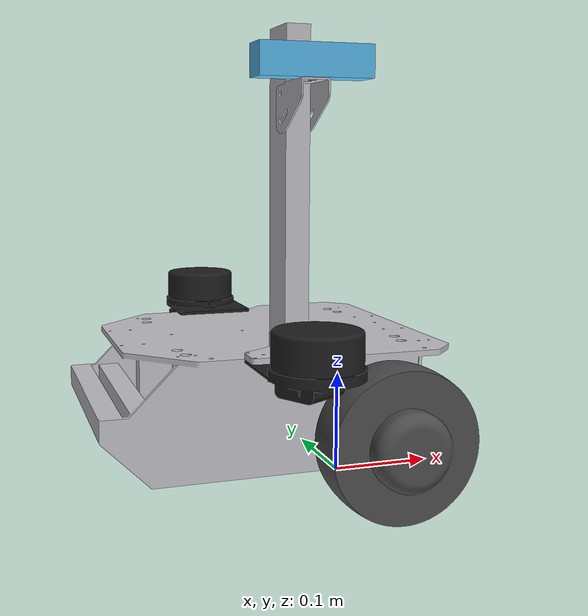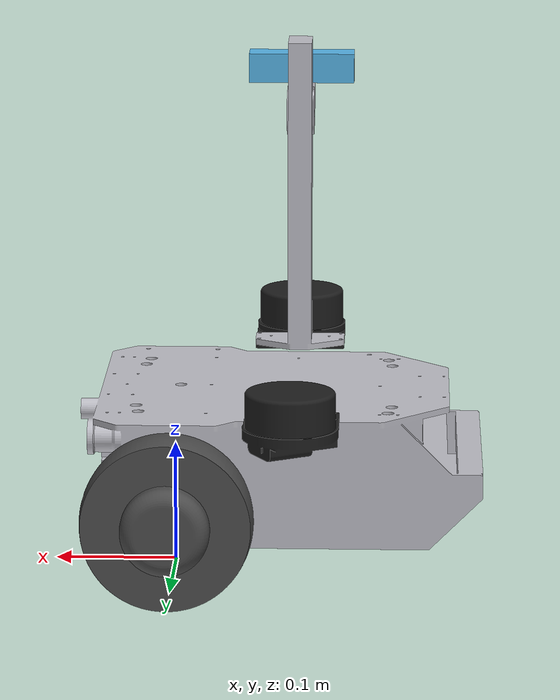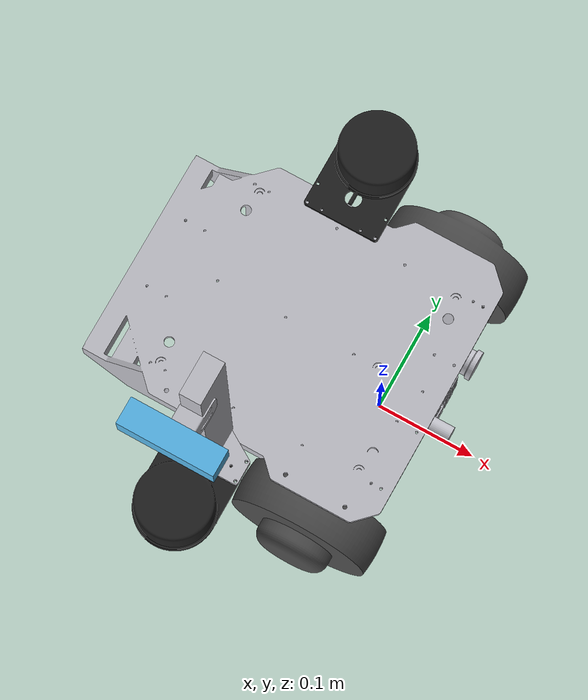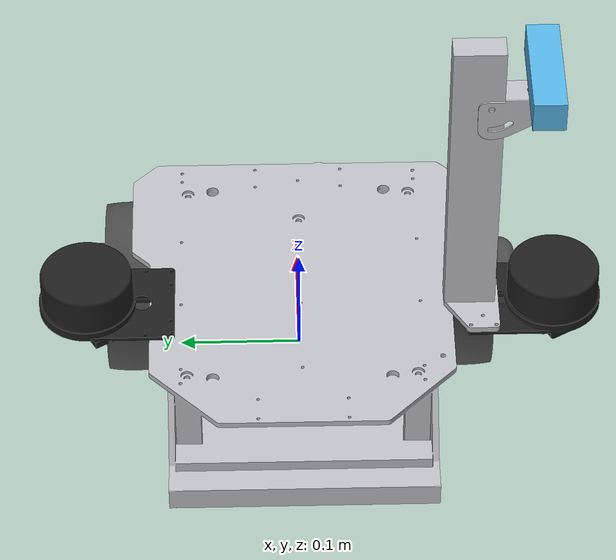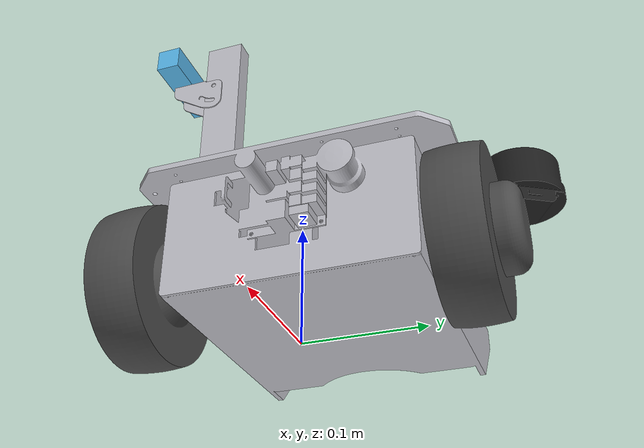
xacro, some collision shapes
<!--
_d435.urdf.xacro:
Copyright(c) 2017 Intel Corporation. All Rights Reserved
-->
<?xml version="1.0"?>
<robot name="mega3" xmlns:xacro="http://www.ros.org/wiki/xacro">

  <xacro:include filename="$(find megarover_description)/urdf/mega3_base_model.xacro" />
  <xacro:include filename="$(find megarover_description)/urdf/mega3.gazebo" />
  <!-- OPTION: LRF TG30 -->
  <xacro:include filename="$(find vs_rover_options_description)/urdf/lrf/tg30_mega3.xacro" />
  <!-- OPTION: bumper sensor -->
  <!-- OPTION: camera stay -->
  <xacro:include filename="$(find vs_rover_options_description)/urdf/cam_stay/cam_stay_mega3.xacro" />
  <!-- OPTION: Intel Realsense depth camera D435i (camera stay required) -->
  <xacro:include filename="$(find vs_rover_options_description)/urdf/depth_cam/_d435i.urdf.xacro" />
  <xacro:sensor_d435i parent="cam_mount_link" use_nominal_extrinsics="true">
    <origin xyz="0.0295 0 0.0095" rpy="0 0 0" />
  </xacro:sensor_d435i>
  <!-- OPTION: AMIR 740 (disabled by default because of interference with camera stay)-->
</robot>

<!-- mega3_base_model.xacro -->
<robot name="mega3" xmlns:xacro="http://www.ros.org/wiki/xacro">

  <xacro:include filename="$(find megarover_description)/urdf/materials.xacro" />
  <xacro:include filename="$(find megarover_description)/urdf/mega3_base_model.gazebo" />
  <!-- OPTION: LRF TG30 -->
  <!-- OPTION: bumper sensor -->

  <link name="base_footprint" />

  <joint name="base_joint" type="fixed">
    <parent link="base_footprint" />
    <child link="base_link" />
    <origin xyz="-0.1 0 0" rpy="0 0 -1.5708" />
  </joint>

  <link name="base_link">
    <inertial>
      <origin xyz="-0.0001512201285105937 -3.420007213019073e-05 0.08388833658828038" rpy="0 0 0" />
      <mass value="11.744482" />
      <inertia ixx="0.091465" iyy="0.06435" izz="0.1253"
        ixy="0.001018" iyz="-0.002369"
        ixz="0.000233" />
    </inertial>
    <visual>
      <origin xyz="0 0 0" rpy="0 0 0" />
      <geometry>
        <mesh filename="package://megarover_description/meshes/mega3/base_link.stl" scale="0.001 0.001 0.001" />
      </geometry>
      <material name="silver" />
    </visual>
    <collision>
      <origin xyz="0 0 0" rpy="0 0 0" />
      <geometry>
        <mesh filename="package://megarover_description/meshes/mega3/base_link.stl" scale="0.001 0.001 0.001" />
      </geometry>
    </collision>
  </link>

  <joint name="left_wheel_joint" type="continuous">
    <origin xyz="-0.136 0.1 0.07" rpy="0 -1.5708 0" />
    <parent link="base_link" />
    <child link="left_wheel_1" />
    <axis xyz="0.0 0.0 1.0" />
  </joint>

  <link name="left_wheel_1">
    <inertial>
      <origin xyz="0.0 0.0 0.00213" rpy="0 1.5708 0" />
      <mass value="1.239934" />
      <inertia ixx="0.002474" iyy="0.00174" izz="0.00174"
        ixy="0.000" iyz="0.000"
        ixz="-0.000" />
    </inertial>
    <visual>
      <origin xyz="-0.07 -0.1 -0.136" rpy="0 1.5708 0" />
      <geometry>
        <mesh filename="package://megarover_description/meshes/mega3/left_wheel_1.stl" scale="0.001 0.001 0.001" />
      </geometry>
      <material name="dark_grey" />
    </visual>
    <collision>
      <origin xyz="-0.07 -0.1 -0.136" rpy="0 1.5708 0" />
      <geometry>
        <mesh filename="package://megarover_description/meshes/mega3/left_wheel_1.stl" scale="0.001 0.001 0.001" />
      </geometry>
    </collision>
  </link>

  <joint name="right_wheel_joint" type="continuous">
    <origin xyz="0.136 0.1 0.07" rpy="0 -1.5708 0" />
    <parent link="base_link" />
    <child link="right_wheel_1" />
    <axis xyz="0.0 0.0 1.0" />
  </joint>

  <link name="right_wheel_1">
    <inertial>
      <origin xyz="0 0 -0.00213" rpy="0 1.5708 0" />
      <mass value="1.239934" />
      <inertia ixx="0.002474" iyy="0.00174" izz="0.00174"
        ixy="-0.000" iyz="-0.000"
        ixz="-0.000" />
    </inertial>
    <visual>
      <origin xyz="-0.07 -0.1 0.136" rpy="0 1.5708 0" />
      <geometry>
        <mesh filename="package://megarover_description/meshes/mega3/right_wheel_1.stl" scale="0.001 0.001 0.001" />
      </geometry>
      <material name="dark_grey" />
    </visual>
    <collision>
      <origin xyz="-0.07 -0.1 0.136" rpy="0 1.5708 0" />
      <geometry>
        <mesh filename="package://megarover_description/meshes/mega3/right_wheel_1.stl" scale="0.001 0.001 0.001" />
      </geometry>
    </collision>
  </link>

</robot>

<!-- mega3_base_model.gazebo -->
<robot name="mega3" xmlns:xacro="http://www.ros.org/wiki/xacro">

  <xacro:property name="body_color" value="Gazebo/Silver" />
  <xacro:property name="wheel_color" value="Gazebo/DarkGrey" />

  <gazebo reference="base_link">
    <material>${body_color}</material>
    <mu1>0.1</mu1>
    <mu2>0.1</mu2>
    <kp>1e6</kp>
    <kd>100.0</kd>
    <minDepth>0.001</minDepth>
    <maxVel>1.0</maxVel>
  </gazebo>

  <gazebo reference="right_wheel_1">
    <mu1>1.0</mu1>
    <mu2>1.0</mu2>
    <fdir1>1 0 0</fdir1>
    <kp>1e6</kp>
    <kd>10.0</kd>
    <minDepth>0.0001</minDepth>
    <maxVel>0.1</maxVel>
    <material>${wheel_color}</material>
  </gazebo>

  <gazebo reference="left_wheel_1">
    <mu1>1.0</mu1>
    <mu2>1.0</mu2>
    <fdir1>1 0 0</fdir1>
    <kp>1e6</kp>
    <kd>10.0</kd>
    <minDepth>0.0001</minDepth>
    <maxVel>0.1</maxVel>
    <material>${wheel_color}</material>
  </gazebo>

  <!-- diff drive plugin -->
  <gazebo>
    <plugin name="megarover3_controller" filename="libgazebo_ros_diff_drive.so">
      <commandTopic>cmd_vel</commandTopic>
      <odometryTopic>odom</odometryTopic>
      <odometryFrame>odom</odometryFrame>
      <odometrySource>world</odometrySource>
      <publishOdomTF>true</publishOdomTF>
      <robotBaseFrame>base_footprint</robotBaseFrame>
      <publishWheelTF>false</publishWheelTF>
      <publishTf>true</publishTf>
      <publishWheelJointState>true</publishWheelJointState>
      <legacyMode>false</legacyMode>
      <updateRate>30</updateRate>
      <leftJoint>left_wheel_joint</leftJoint>
      <rightJoint>right_wheel_joint</rightJoint>
      <wheelSeparation>0.272</wheelSeparation>
      <wheelDiameter>0.140</wheelDiameter>
      <wheelAcceleration>1.0</wheelAcceleration>
      <wheelTorque>30</wheelTorque>
      <rosDebugLevel>na</rosDebugLevel>
    </plugin>
  </gazebo>

</robot>

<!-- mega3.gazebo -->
<robot name="mega3" xmlns:xacro="http://www.ros.org/wiki/xacro">

  <xacro:property name="body_color" value="Gazebo/Silver" />
  <xacro:property name="wheel_color" value="Gazebo/DarkGrey" />

  <gazebo reference="base_link">
    <material>${body_color}</material>
    <mu1>0.1</mu1>
    <mu2>0.1</mu2>
    <kp>1e6</kp>
    <kd>100.0</kd>
    <minDepth>0.001</minDepth>
    <maxVel>1.0</maxVel>
  </gazebo>

  <gazebo reference="right_wheel_1">
    <mu1>1.0</mu1>
    <mu2>1.0</mu2>
    <fdir1>1 0 0</fdir1>
    <kp>1e6</kp>
    <kd>10.0</kd>
    <minDepth>0.0001</minDepth>
    <maxVel>0.1</maxVel>
    <material>${wheel_color}</material>
  </gazebo>

  <gazebo reference="left_wheel_1">
    <mu1>1.0</mu1>
    <mu2>1.0</mu2>
    <fdir1>1 0 0</fdir1>
    <kp>1e6</kp>
    <kd>10.0</kd>
    <minDepth>0.0001</minDepth>
    <maxVel>0.1</maxVel>
    <material>${wheel_color}</material>
  </gazebo>

  <!-- diff_drive plugin -->
  <gazebo>
    <plugin name="mega3_diff_drive" filename="libgazebo_ros_diff_drive.so">
      <ros>
      </ros>

      <update_rate>30</update_rate>

      <!-- wheels -->
      <left_joint>left_wheel_joint</left_joint>
      <right_joint>right_wheel_joint</right_joint>

      <!-- kinematics -->
      <wheel_separation>0.242</wheel_separation>
      <wheel_diameter>0.140</wheel_diameter>

      <!-- limits -->
      <max_wheel_torque>30</max_wheel_torque>
      <max_wheel_acceleration>1.0</max_wheel_acceleration>

      <command_topic>cmd_vel</command_topic>

      <!-- output -->
      <publish_odom>true</publish_odom>
      <publish_odom_tf>true</publish_odom_tf>
      <publish_wheel_tf>false</publish_wheel_tf>

      <odometry_topic>odom</odometry_topic>
      <odometry_frame>odom</odometry_frame>
      <robot_base_frame>base_footprint</robot_base_frame>
    </plugin>
  </gazebo>

  <!-- joint_state_publisher plugin -->
  <gazebo>
      <plugin name="mega3_joint_state" filename="libgazebo_ros_joint_state_publisher.so">
      <ros>
        <remapping>~/out:=joint_states</remapping>
      </ros>
      <update_rate>30</update_rate>
      <joint_name>left_wheel_joint</joint_name>
      <joint_name>right_wheel_joint</joint_name>
    </plugin>
  </gazebo>

</robot>

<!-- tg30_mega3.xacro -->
<robot name="lrf_tg30_mega3" xmlns:xacro="http://ros.org/wiki/xacro">
  <xacro:include filename="$(find vs_rover_options_description)/urdf/lrf/tg30_mega3.gazebo" />

  <xacro:property name="tg30_lrf_front_x_offset" value="0.1990" />
  <xacro:property name="tg30_lrf_front_y_offset" value="0.0" />
  <xacro:property name="tg30_lrf_front_z_offset" value="0.1809" />
  <xacro:property name="tg30_lrf_back_x_offset" value="-0.1690" />
  <xacro:property name="tg30_lrf_back_y_offset" value="0.0" />
  <xacro:property name="tg30_lrf_back_z_offset" value="0.1809" />
  <xacro:property name="tg30_center_of_mass_x" value="-0.004299" />
  <xacro:property name="tg30_center_of_mass_y" value="-0.000337" />
  <xacro:property name="tg30_center_of_mass_z" value="-0.018037" />

  <joint name="front_lrf_joint" type="fixed">
    <parent link="base_link" />
    <child link="front_lrf_link" />
    <origin xyz="${tg30_lrf_front_x_offset} ${tg30_lrf_front_y_offset} ${tg30_lrf_front_z_offset}" rpy="0 0 0" />
  </joint>

  <link name="front_lrf_link">
    <inertial>
      <origin xyz="${tg30_center_of_mass_x} ${tg30_center_of_mass_y} ${tg30_center_of_mass_z}" rpy="0 0 0" />
      <mass value="0.200" />
      <inertia ixx="0.0001205" iyy="0.0001561" izz="0.0001977"
        ixy="0.00" iyz="0.00"
        ixz="0.00" />
    </inertial>
    <visual>
      <origin xyz="0 0 0" rpy="0 0 0" />
      <geometry>
        <mesh filename="package://vs_rover_options_description/meshes/lrf/tg30.stl" scale="0.001 0.001 0.001" />
      </geometry>
      <material name="black" />
    </visual>
    <collision>
      <origin xyz="0 0 0" rpy="0 0 0" />
      <geometry>
        <mesh filename="package://vs_rover_options_description/meshes/lrf/tg30.stl" scale="0.001 0.001 0.001" />
      </geometry>
    </collision>
  </link>

  <joint name="back_lrf_joint" type="fixed">
    <parent link="base_link" />
    <child link="back_lrf_link" />
    <origin xyz="${tg30_lrf_back_x_offset} ${tg30_lrf_back_y_offset} ${tg30_lrf_back_z_offset}" rpy="0 0 ${-pi}" />
  </joint>

  <link name="back_lrf_link">
    <inertial>
      <origin xyz="${tg30_center_of_mass_x} ${tg30_center_of_mass_y} ${tg30_center_of_mass_z}" rpy="0 0 0" />
      <mass value="0.200" />
      <inertia ixx="0.0001205" iyy="0.0001561" izz="0.0001977"
        ixy="0.00" iyz="0.00"
        ixz="0.00" />
    </inertial>
    <visual>
      <origin xyz="0 0 0" rpy="0 0 0" />
      <geometry>
        <mesh filename="package://vs_rover_options_description/meshes/lrf/tg30.stl" scale="0.001 0.001 0.001" />
      </geometry>
      <material name="black" />
    </visual>
    <collision>
      <origin xyz="0 0 0" rpy="0 0 0" />
      <geometry>
        <mesh filename="package://vs_rover_options_description/meshes/lrf/tg30.stl" scale="0.001 0.001 0.001" />
      </geometry>
    </collision>
  </link>

</robot>

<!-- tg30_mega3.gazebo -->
<robot name="lrf_tg30_mega3" xmlns:xacro="http://www.ros.org/wiki/xacro">

  <xacro:arg name="front_laser_visual" default="false" />
  <xacro:arg name="back_laser_visual" default="false" />

  <xacro:property name="lrf_color" value="Gazebo/FlatBlack" />
  <xacro:property name="DEG_TO_RAD" value="0.01745329251994329577" />
  <xacro:property name="LRF_ANGLE" value="172" />

  <gazebo reference="front_lrf_link">
    <material>${lrf_color}</material>
    <selfCollide>true</selfCollide>
    <sensor name="tg30_lidar_front" type="ray">
        <always_on>true</always_on>
        <visualize>$(arg front_laser_visual)</visualize>
        <pose>0 0 0 0 0 0</pose>
        <update_rate>12</update_rate>
        <ray>
          <scan>
            <horizontal>
              <samples>360</samples>
              <resolution>1.0</resolution>
              <min_angle>${-LRF_ANGLE*DEG_TO_RAD}</min_angle>
              <max_angle>${ LRF_ANGLE*DEG_TO_RAD}</max_angle>
            </horizontal>
          </scan>
          <range>
            <min>0.05</min>
            <max>30.0</max>
            <resolution>0.01</resolution>
          </range>
          <noise>
            <type>gaussian</type>
            <mean>0.0</mean>
            <stddev>0.01</stddev>
          </noise>
        </ray>
        <plugin name="mega3_front_laserscan" filename="libgazebo_ros_ray_sensor.so">
          <ros>
            <remapping>~/out:=scan</remapping>
          </ros>
          <output_type>sensor_msgs/LaserScan</output_type>
          <frame_name>front_lrf_link</frame_name>
        </plugin>
      </sensor>
  </gazebo>

  <gazebo reference="back_lrf_link">
    <material>${lrf_color}</material>
    <selfCollide>true</selfCollide>
    <sensor name="tg30_lidar_back" type="ray">
        <always_on>true</always_on>
        <visualize>$(arg back_laser_visual)</visualize>
        <pose>0 0 0 0 0 0</pose>
        <update_rate>12</update_rate>
        <ray>
          <scan>
            <horizontal>
              <samples>360</samples>
              <resolution>1.0</resolution>
              <min_angle>${-LRF_ANGLE*DEG_TO_RAD}</min_angle>
              <max_angle>${ LRF_ANGLE*DEG_TO_RAD}</max_angle>
            </horizontal>
          </scan>
          <range>
            <min>0.05</min>
            <max>30.0</max>
            <resolution>0.01</resolution>
          </range>
          <noise>
            <type>gaussian</type>
            <mean>0.0</mean>
            <stddev>0.01</stddev>
          </noise>
        </ray>
        <plugin name="mega3_back_laserscan" filename="libgazebo_ros_ray_sensor.so">
          <ros>
            <remapping>~/out:=back_scan</remapping>
          </ros>
          <output_type>sensor_msgs/LaserScan</output_type>
          <frame_name>back_lrf_link</frame_name>
        </plugin>
      </sensor>
  </gazebo>
</robot>

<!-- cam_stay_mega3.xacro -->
<robot name="cam_stay_mega3" xmlns:xacro="http://ros.org/wiki/xacro">

  <xacro:property name="cam_frame_height" value="0.21" />

  <xacro:property name="cam_pitch_angle" value="0.0" />

  <xacro:property name="cam_mount_frame_x_pos" value="0.0" />
  <xacro:property name="cam_mount_frame_y_pos" value="0.0" />
  <xacro:property name="cam_mount_frame_z_pos" value="0.0" />

  <joint name="cam_stay_frame_joint" type="fixed">
    <origin xyz="${0.143+cam_mount_frame_x_pos} ${-cam_mount_frame_y_pos} ${0.155+cam_mount_frame_z_pos}" rpy="0 0 0" />
    <parent link="base_link" />
    <child link="cam_mount_frame" />
  </joint>

  <link name="cam_mount_frame">
    <inertial>
      <origin xyz="-0.003 0.00027262444441578104 0.12730447451826274" rpy="0 0 -1.5708" />
      <mass value="0.5741535425284527" />
      <inertia ixx="0.003675" iyy="0.00363" izz="0.000109" ixy="-0.0" iyz="2e-05" ixz="0.0" />
    </inertial>
    <visual>
      <origin xyz="-0.143 0 -0.155" rpy="0 0 -1.5708" />
      <geometry>
        <mesh filename="package://vs_rover_options_description/meshes/cam_stay/cam_mount_frame.stl" scale="0.001 0.001 0.001" />
      </geometry>
      <material name="silver" />
    </visual>
    <collision>
      <origin xyz="-0.143 0 -0.155" rpy="0 0 -1.5708" />
      <geometry>
        <mesh filename="package://vs_rover_options_description/meshes/cam_stay/cam_mount_frame.stl" scale="0.001 0.001 0.001" />
      </geometry>
    </collision>
  </link>

  <joint name="cam_stay_link_joint" type="fixed">
    <origin xyz="0.0 0.0 ${cam_frame_height}" rpy="0 ${cam_pitch_angle} 0" />
    <parent link="cam_mount_frame" />
    <child link="cam_mount_link" />
  </joint>

  <link name="cam_mount_link">
    <inertial>
      <origin xyz="0.01 0.00027262444441578104 0" rpy="0 0 -1.5708" />
      <mass value="0.015" />
      <inertia ixx="0.0000055" iyy="0.00000329" izz="0.000005256" ixy="-0.0" iyz="0.0" ixz="0.0" />
    </inertial>
    <visual>
      <origin xyz="-0.143 0 -0.403" rpy="0 0 -1.5708" />
      <geometry>
        <mesh filename="package://vs_rover_options_description/meshes/cam_stay/cam_mount_link.stl" scale="0.001 0.001 0.001" />
      </geometry>
      <material name="silver" />
    </visual>
    <collision>
      <origin xyz="-0.143 0 -0.403" rpy="0 0 -1.5708" />
      <geometry>
        <mesh filename="package://vs_rover_options_description/meshes/cam_stay/cam_mount_link.stl" scale="0.001 0.001 0.001" />
      </geometry>
    </collision>
  </link>

</robot>

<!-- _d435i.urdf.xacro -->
<robot name="sensor_d435i" xmlns:xacro="http://ros.org/wiki/xacro">
  <xacro:include filename="$(find vs_rover_options_description)/urdf/depth_cam/_d435.urdf.xacro" />
  <xacro:include filename="$(find vs_rover_options_description)/urdf/depth_cam/_d435i_imu_modules.urdf.xacro" />

  <xacro:macro name="sensor_d435i" params="parent *origin name:=camera use_nominal_extrinsics:=false">
    <xacro:sensor_d435 parent="${parent}" name="${name}" use_nominal_extrinsics="${use_nominal_extrinsics}">
      <xacro:insert_block name="origin" />
    </xacro:sensor_d435>
    <xacro:d435i_imu_modules name="${name}" use_nominal_extrinsics="${use_nominal_extrinsics}" />
  </xacro:macro>
</robot>

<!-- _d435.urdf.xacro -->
<robot name="sensor_d435" xmlns:xacro="http://ros.org/wiki/xacro">
  <!-- Includes -->
  <xacro:include filename="$(find vs_rover_options_description)/urdf/depth_cam/_d435.gazebo.xacro" />

  <xacro:macro name="sensor_d435" params="parent *origin name:=camera topics_ns:=camera use_nominal_extrinsics:=false use_mesh:=true publish_pointcloud:=true">
    <xacro:property name="M_PI" value="3.1415926535897931" />

    <!-- The following values are approximate, and the camera node
     publishing TF values with actual calibrated camera extrinsic values -->
    <xacro:property name="d435_cam_depth_to_infra1_offset" value="0.0" />
    <xacro:property name="d435_cam_depth_to_infra2_offset" value="-0.050" />
    <xacro:property name="d435_cam_depth_to_color_offset" value="0.015" />

    <!-- The following values model the aluminum peripherial case for the
  	D435 camera, with the camera joint represented by the actual
  	peripherial camera tripod mount -->
    <xacro:property name="d435_cam_width" value="0.090" />
    <xacro:property name="d435_cam_height" value="0.025" />
    <xacro:property name="d435_cam_depth" value="0.02505" />
    <xacro:property name="d435_cam_mount_from_center_offset" value="0.0149" />
    <!-- glass cover is 0.1 mm inwards from front aluminium plate -->
    <xacro:property name="d435_glass_to_front" value="0.1e-3" />
    <!-- see datasheet Revision 007, Fig. 4-4 page 65 -->
    <xacro:property name="d435_zero_depth_to_glass" value="4.2e-3" />
    <!-- convenience precomputation to avoid clutter-->
    <xacro:property name="d435_mesh_x_offset" value="${d435_cam_mount_from_center_offset-d435_glass_to_front-d435_zero_depth_to_glass}" />

    <!-- The following offset is relative the the physical D435 camera peripherial
  	camera tripod mount -->
    <xacro:property name="d435_cam_depth_px" value="${d435_cam_mount_from_center_offset}" />
    <xacro:property name="d435_cam_depth_py" value="0.0175" />
    <xacro:property name="d435_cam_depth_pz" value="${d435_cam_height/2}" />

    <!-- camera body, with origin at bottom screw mount -->
    <joint name="${name}_joint" type="fixed">
      <xacro:insert_block name="origin" />
      <parent link="${parent}" />
      <child link="${name}_bottom_screw_frame" />
    </joint>
    <link name="${name}_bottom_screw_frame" />

    <joint name="${name}_link_joint" type="fixed">
      <origin xyz="${d435_mesh_x_offset} ${d435_cam_depth_py} ${d435_cam_depth_pz}" rpy="0 0 0" />
      <parent link="${name}_bottom_screw_frame" />
      <child link="${name}_link" />
    </joint>

    <link name="${name}_link">
      <visual>
        <xacro:if value="${use_mesh}">
          <!-- the mesh origin is at front plate in between the two infrared camera axes -->
          <origin xyz="${d435_zero_depth_to_glass + d435_glass_to_front} ${-d435_cam_depth_py} 0" rpy="${M_PI/2} 0 ${M_PI/2}" />
          <geometry>
            <mesh filename="package://vs_rover_options_description/meshes/depth_cam/d435.dae" />
          </geometry>
        </xacro:if>
        <xacro:unless value="${use_mesh}">
          <origin xyz="0 ${-d435_cam_depth_py} 0" rpy="0 0 0" />
          <geometry>
            <box size="${d435_cam_depth} ${d435_cam_width} ${d435_cam_height}" />
          </geometry>
        </xacro:unless>
      </visual>
      <collision>
        <origin xyz="0 ${-d435_cam_depth_py} 0" rpy="0 0 0" />
        <geometry>
          <box size="${d435_cam_depth} ${d435_cam_width} ${d435_cam_height}" />
        </geometry>
      </collision>
      <inertial>
        <!-- EDITED by Vstone -->
        <mass value="0.072" />
        <origin xyz="${-d435_mesh_x_offset} ${-d435_cam_depth_py} 0" />
        <inertia ixx="0.000045461" iyy="0.00000667718" izz="0.00004587" ixy="0.0" iyz="0.0" ixz="0.0" />
      </inertial>
    </link>

    <!-- Use the nominal extrinsics between camera frames if the calibrated extrinsics aren't being published. e.g. running the device in simulation  -->
    <xacro:if value="${use_nominal_extrinsics}">
      <!-- camera depth joints and links -->
      <joint name="${name}_depth_joint" type="fixed">
        <origin xyz="0 0 0" rpy="0 0 0" />
        <parent link="${name}_link" />
        <child link="${name}_depth_frame" />
      </joint>
      <link name="${name}_depth_frame" />

      <joint name="${name}_depth_optical_joint" type="fixed">
        <origin xyz="0 0 0" rpy="${-M_PI/2} 0 ${-M_PI/2}" />
        <parent link="${name}_depth_frame" />
        <child link="${name}_depth_optical_frame" />
      </joint>
      <link name="${name}_depth_optical_frame" />

      <!-- camera left IR joints and links -->
      <joint name="${name}_infra1_joint" type="fixed">
        <origin xyz="0 ${d435_cam_depth_to_infra1_offset} 0" rpy="0 0 0" />
        <parent link="${name}_link" />
        <child link="${name}_infra1_frame" />
      </joint>
      <link name="${name}_infra1_frame" />

      <joint name="${name}_infra1_optical_joint" type="fixed">
        <origin xyz="0 0 0" rpy="${-M_PI/2} 0 ${-M_PI/2}" />
        <parent link="${name}_infra1_frame" />
        <child link="${name}_infra1_optical_frame" />
      </joint>
      <link name="${name}_infra1_optical_frame" />

      <!-- camera right IR joints and links -->
      <joint name="${name}_infra2_joint" type="fixed">
        <origin xyz="0 ${d435_cam_depth_to_infra2_offset} 0" rpy="0 0 0" />
        <parent link="${name}_link" />
        <child link="${name}_infra2_frame" />
      </joint>
      <link name="${name}_infra2_frame" />

      <joint name="${name}_infra2_optical_joint" type="fixed">
        <origin xyz="0 0 0" rpy="${-M_PI/2} 0 ${-M_PI/2}" />
        <parent link="${name}_infra2_frame" />
        <child link="${name}_infra2_optical_frame" />
      </joint>
      <link name="${name}_infra2_optical_frame" />

      <!-- camera color joints and links -->
      <joint name="${name}_color_joint" type="fixed">
        <origin xyz="0 ${d435_cam_depth_to_color_offset} 0" rpy="0 0 0" />
        <parent link="${name}_link" />
        <child link="${name}_color_frame" />
      </joint>
      <link name="${name}_color_frame" />

      <joint name="${name}_color_optical_joint" type="fixed">
        <origin xyz="0 0 0" rpy="${-M_PI/2} 0 ${-M_PI/2}" />
        <parent link="${name}_color_frame" />
        <child link="${name}_color_optical_frame" />
      </joint>
      <link name="${name}_color_optical_frame" />
    </xacro:if>

    <!-- Realsense Gazebo Plugin -->
    <xacro:gazebo_d435 camera_name="${name}" reference_link="${name}_link" topics_ns="${topics_ns}" depth_optical_frame="${name}_depth_optical_frame" color_optical_frame="${name}_color_optical_frame" infrared1_optical_frame="${name}_infra1_ir_optical_frame" infrared2_optical_frame="${name}_infra2_ir_optical_frame" publish_pointcloud="${publish_pointcloud}" />
  </xacro:macro>
</robot>

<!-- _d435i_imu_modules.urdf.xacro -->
<!--
License: Apache 2.0. See LICENSE file in root directory.
Copyright(c) 2020 Intel Corporation. All Rights Reserved

This is the URDF model for the inertial modules of the
Intel RealSense 435i camera.
-->
<robot name="d435i_imu_modules" xmlns:xacro="http://www.ros.org/wiki/xacro">
  <xacro:macro name="d435i_imu_modules" params="name use_nominal_extrinsics">
    <xacro:property name="M_PI" value="${pi}" />

    <xacro:if value="${use_nominal_extrinsics}">
      <link name="${name}_accel_frame" />
      <link name="${name}_accel_optical_frame" />
      <link name="${name}_gyro_frame" />
      <link name="${name}_gyro_optical_frame" />

      <joint name="${name}_accel_joint" type="fixed">
        <origin xyz="-0.01174 -0.00552 0.0051" rpy="0 0 0" />
        <parent link="${name}_link" />
        <child link="${name}_accel_frame" />
      </joint>

      <joint name="${name}_accel_optical_joint" type="fixed">
        <origin xyz="0 0 0" rpy="${-M_PI/2} 0 ${-M_PI/2}" />
        <parent link="${name}_accel_frame" />
        <child link="${name}_accel_optical_frame" />
      </joint>

      <joint name="${name}_gyro_joint" type="fixed">
        <origin xyz="-0.01174 -0.00552 0.0051" rpy="0 0 0" />
        <parent link="${name}_link" />
        <child link="${name}_gyro_frame" />
      </joint>

      <joint name="${name}_gyro_optical_joint" type="fixed">
        <origin xyz="0 0 0" rpy="${-M_PI/2} 0 ${-M_PI/2}" />
        <parent link="${name}_gyro_frame" />
        <child link="${name}_gyro_optical_frame" />
      </joint>

      <!-- EDITED by Vstone -->
      <gazebo reference="${name}_gyro_frame">
        <sensor name="imu_sensor" type="imu">
          <always_on>true</always_on>
          <update_rate>100</update_rate>
          <imu>
            <angular_velocity>
              <x>
                <noise type="gaussian">
                  <mean>0.0</mean>
                  <stddev>2e-4</stddev>
                </noise>
              </x>
              <y>
                <noise type="gaussian">
                  <mean>0.0</mean>
                  <stddev>2e-4</stddev>
                </noise>
              </y>
              <z>
                <noise type="gaussian">
                  <mean>0.0</mean>
                  <stddev>2e-4</stddev>
                </noise>
              </z>
            </angular_velocity>
            <linear_acceleration>
              <x>
                <noise type="gaussian">
                  <mean>0.0</mean>
                  <stddev>1.7e-2</stddev>
                </noise>
              </x>
              <y>
                <noise type="gaussian">
                  <mean>0.0</mean>
                  <stddev>1.7e-2</stddev>
                </noise>
              </y>
              <z>
                <noise type="gaussian">
                  <mean>0.0</mean>
                  <stddev>1.7e-2</stddev>
                </noise>
              </z>
            </linear_acceleration>
          </imu>
          <plugin name="d435i_imu" filename="libgazebo_ros_imu_sensor.so">
            <ros>
              <remapping>~/out:=imu</remapping>
            </ros>
          </plugin>
        </sensor>
      </gazebo>

    </xacro:if>
  </xacro:macro>
</robot>
